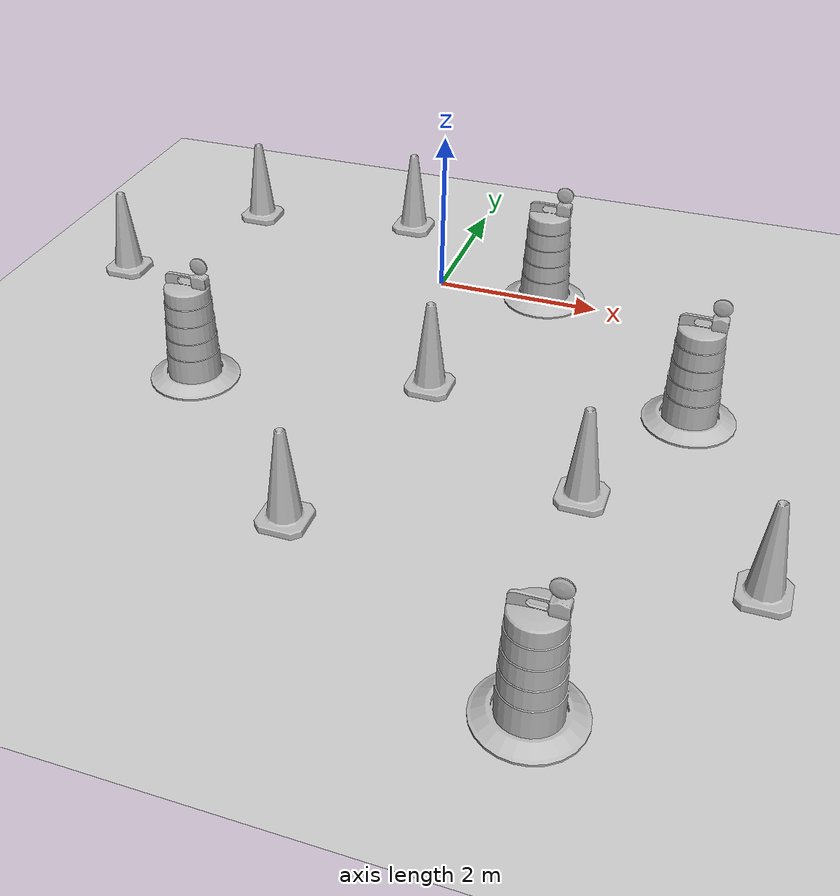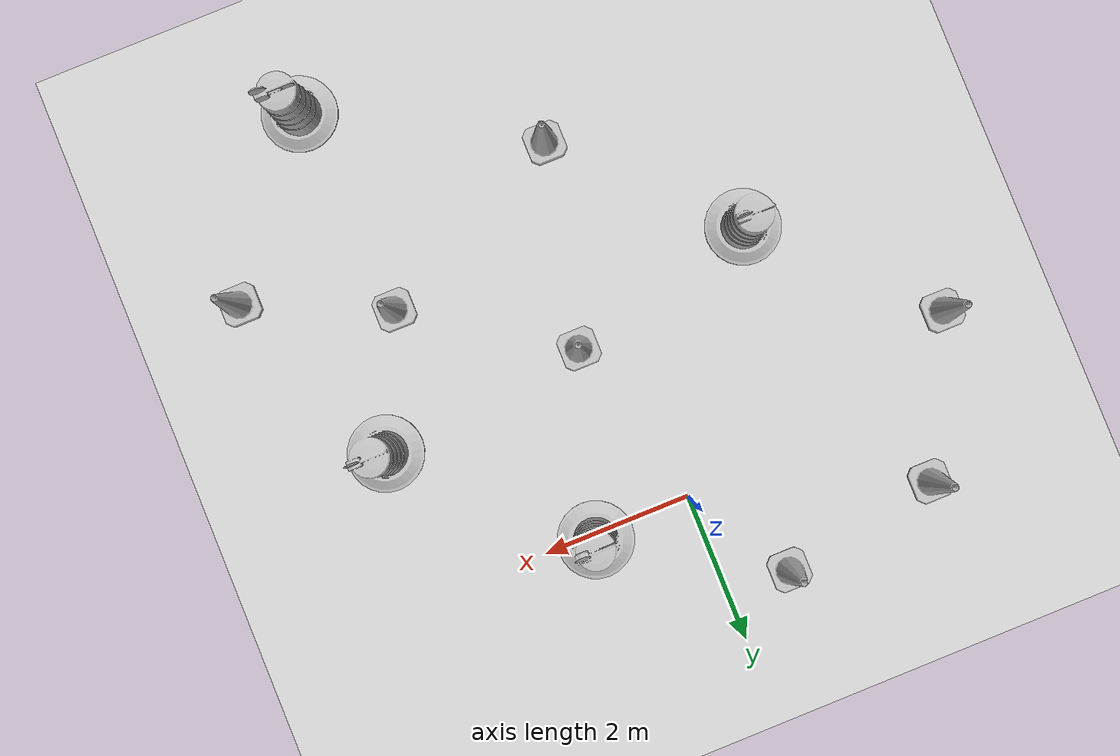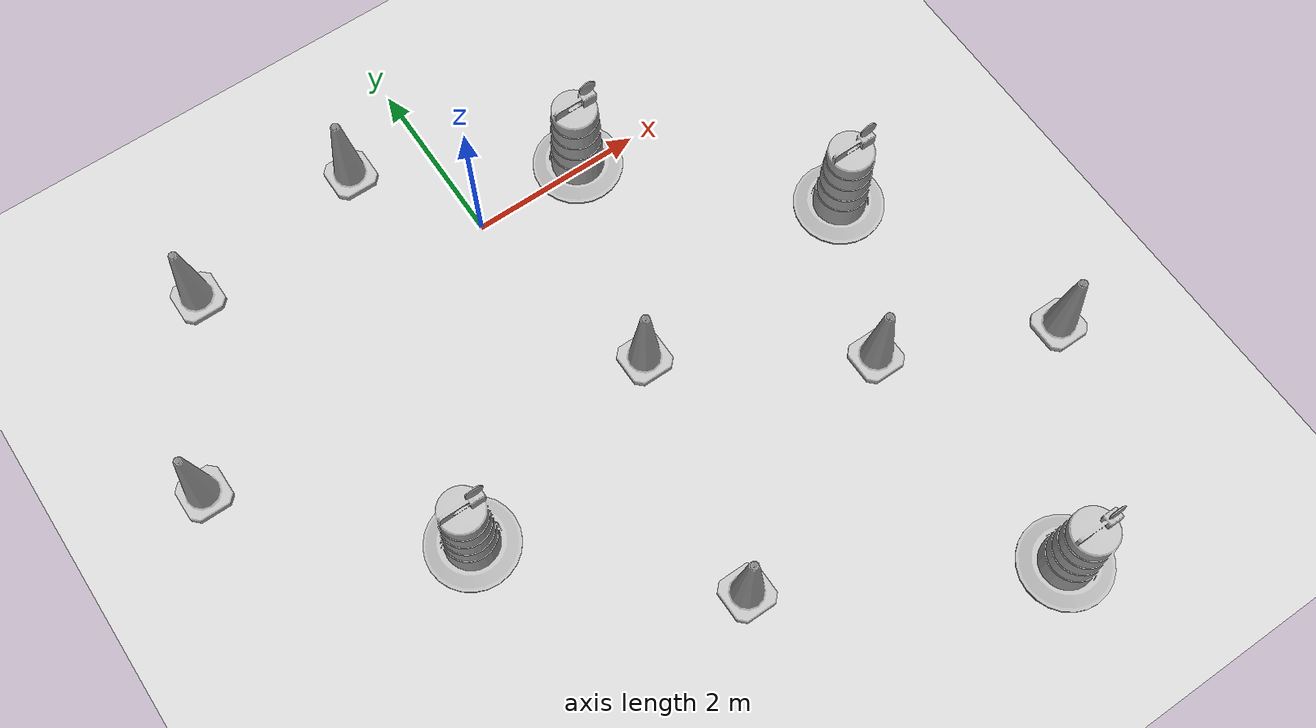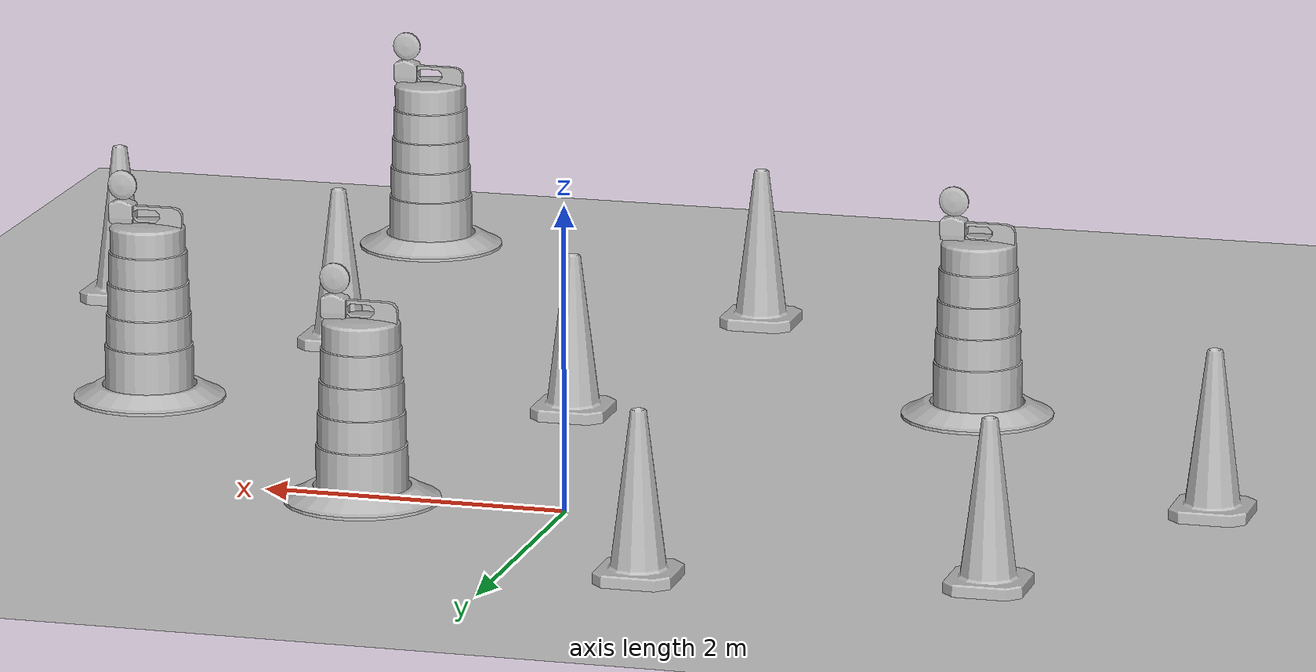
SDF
<sdf version="1.7">
 <world name="default">
  <light name="sun" type="directional">
   <pose>0 0 10 0 -0 0</pose>
   <diffuse>0.8 0.8 0.8 1</diffuse>
   <specular>0.2 0.2 0.2 1</specular>
   <attenuation>
    <range>1000</range>
    <constant>0.9</constant>
    <linear>0.01</linear>
    <quadratic>0.001</quadratic>
   </attenuation>
   <direction>-0.5 0.1 -0.9</direction>
   <spot><inner_angle>0</inner_angle><outer_angle>0</outer_angle><falloff>0</falloff></spot>
  </light>
  <model name="ground_plane">
   <static>1</static>
   <link name="link">
    <collision name="collision">
     <geometry><plane><normal>0 0 1</normal><size>100 100</size></plane></geometry>
     <surface>
      <contact><collide_bitmask>65535</collide_bitmask></contact>
      <friction><ode><mu>100</mu><mu2>50</mu2></ode></friction>
     </surface>
    </collision>
    <visual name="visual">
     <cast_shadows>0</cast_shadows>
     <geometry><plane><normal>0 0 1</normal><size>100 100</size></plane></geometry>
     <material>
      <script><uri>file://media/materials/scripts/gazebo.material</uri><name>Gazebo/Grey</name></script>
     </material>
    </visual>
   </link>
  </model>
  <gravity>0 0 -9.8</gravity>
  <magnetic_field>6e-06 2.3e-05 -4.2e-05</magnetic_field>
  <atmosphere type="adiabatic"/>
  <physics type="ode">
   <max_step_size>0.001</max_step_size>
   <real_time_factor>1</real_time_factor>
   <real_time_update_rate>1000</real_time_update_rate>
  </physics>
  <scene><ambient>0.4 0.4 0.4 1</ambient><background>0.7 0.7 0.7 1</background><shadows>1</shadows></scene>
  <audio><device>default</device></audio>
  <spherical_coordinates>
   <surface_model>EARTH_WGS84</surface_model>
   <latitude_deg>0</latitude_deg>
   <longitude_deg>0</longitude_deg>
   <elevation>0</elevation>
   <heading_deg>0</heading_deg>
  </spherical_coordinates>
  <model name="Construction Cone">
   <link name="link">
    <collision name="collision">
     <geometry>
      <mesh><scale>10 10 10</scale><uri>model://construction_cone/meshes/construction_cone.dae</uri></mesh>
     </geometry>
    </collision>
    <visual name="visual">
     <geometry>
      <mesh><scale>10 10 10</scale><uri>model://construction_cone/meshes/construction_cone.dae</uri></mesh>
     </geometry>
    </visual>
    <inertial>
     <inertia><ixx>1</ixx><ixy>0</ixy><ixz>0</ixz><iyy>1</iyy><iyz>0</iyz><izz>1</izz></inertia>
     <mass>1</mass>
    </inertial>
   </link>
   <pose>-4 -1 -0 0 -1e-06 0</pose>
  </model>
  <model name="Construction Barrel_0">
   <link name="link">
    <inertial>
     <pose>0 0 0.4 0 -0 0</pose>
     <mass>500</mass>
     <inertia><ixx>51.2096</ixx><iyy>51.2096</iyy><izz>25</izz><ixy>0</ixy><ixz>0</ixz><iyz>0</iyz></inertia>
    </inertial>
    <collision name="collision">
     <geometry><mesh><uri>model://construction_barrel/meshes/construction_barrel.dae</uri></mesh></geometry>
    </collision>
    <visual name="visual">
     <geometry><mesh><uri>model://construction_barrel/meshes/construction_barrel.dae</uri></mesh></geometry>
    </visual>
   </link>
   <pose>-2.00009 -3.00003 -2e-06 7e-06 -4e-06 -2.1e-05</pose>
  </model>
  <model name="Construction Cone_0">
   <link name="link">
    <collision name="collision">
     <geometry>
      <mesh><scale>10 10 10</scale><uri>model://construction_cone/meshes/construction_cone.dae</uri></mesh>
     </geometry>
    </collision>
    <visual name="visual">
     <geometry>
      <mesh><scale>10 10 10</scale><uri>model://construction_cone/meshes/construction_cone.dae</uri></mesh>
     </geometry>
    </visual>
    <inertial>
     <inertia><ixx>1</ixx><ixy>0</ixy><ixz>0</ixz><iyy>1</iyy><iyz>0</iyz><izz>1</izz></inertia>
     <mass>1</mass>
    </inertial>
   </link>
   <pose>-3 1 -2e-06 -3e-06 -1e-06 -0</pose>
  </model>
  <model name="Construction Barrel_1">
   <link name="link">
    <inertial>
     <pose>0 0 0.4 0 -0 0</pose>
     <mass>500</mass>
     <inertia><ixx>51.2096</ixx><iyy>51.2096</iyy><izz>25</izz><ixy>0</ixy><ixz>0</ixz><iyz>0</iyz></inertia>
    </inertial>
    <collision name="collision">
     <geometry><mesh><uri>model://construction_barrel/meshes/construction_barrel.dae</uri></mesh></geometry>
    </collision>
    <visual name="visual">
     <geometry><mesh><uri>model://construction_barrel/meshes/construction_barrel.dae</uri></mesh></geometry>
    </visual>
   </link>
   <pose>3.44883 -2.00002 -1e-06 4e-06 -2e-06 -1.5e-05</pose>
  </model>
  <model name="Construction Cone_1">
   <link name="link">
    <collision name="collision">
     <geometry>
      <mesh><scale>10 10 10</scale><uri>model://construction_cone/meshes/construction_cone.dae</uri></mesh>
     </geometry>
    </collision>
    <visual name="visual">
     <geometry>
      <mesh><scale>10 10 10</scale><uri>model://construction_cone/meshes/construction_cone.dae</uri></mesh>
     </geometry>
    </visual>
    <inertial>
     <inertia><ixx>1</ixx><ixy>0</ixy><ixz>0</ixz><iyy>1</iyy><iyz>0</iyz><izz>1</izz></inertia>
     <mass>1</mass>
    </inertial>
   </link>
   <pose>-0 -5 -0 0 -0 0</pose>
  </model>
  <model name="Construction Cone_2">
   <link name="link">
    <collision name="collision">
     <geometry>
      <mesh><scale>10 10 10</scale><uri>model://construction_cone/meshes/construction_cone.dae</uri></mesh>
     </geometry>
    </collision>
    <visual name="visual">
     <geometry>
      <mesh><scale>10 10 10</scale><uri>model://construction_cone/meshes/construction_cone.dae</uri></mesh>
     </geometry>
    </visual>
    <inertial>
     <inertia><ixx>1</ixx><ixy>0</ixy><ixz>0</ixz><iyy>1</iyy><iyz>0</iyz><izz>1</izz></inertia>
     <mass>1</mass>
    </inertial>
   </link>
   <pose>2.64525 -3.69968 -0 0 -0 0</pose>
  </model>
  <model name="Construction Cone_3">
   <link name="link">
    <collision name="collision">
     <geometry>
      <mesh><scale>10 10 10</scale><uri>model://construction_cone/meshes/construction_cone.dae</uri></mesh>
     </geometry>
    </collision>
    <visual name="visual">
     <geometry>
      <mesh><scale>10 10 10</scale><uri>model://construction_cone/meshes/construction_cone.dae</uri></mesh>
     </geometry>
    </visual>
    <inertial>
     <inertia><ixx>1</ixx><ixy>0</ixy><ixz>0</ixz><iyy>1</iyy><iyz>0</iyz><izz>1</izz></inertia>
     <mass>1</mass>
    </inertial>
   </link>
   <pose>4.49592 -4.52142 -0 0 -1e-06 0</pose>
  </model>
  <model name="Construction Cone_4">
   <link name="link">
    <collision name="collision">
     <geometry>
      <mesh><scale>10 10 10</scale><uri>model://construction_cone/meshes/construction_cone.dae</uri></mesh>
     </geometry>
    </collision>
    <visual name="visual">
     <geometry>
      <mesh><scale>10 10 10</scale><uri>model://construction_cone/meshes/construction_cone.dae</uri></mesh>
     </geometry>
    </visual>
    <inertial>
     <inertia><ixx>1</ixx><ixy>0</ixy><ixz>0</ixz><iyy>1</iyy><iyz>0</iyz><izz>1</izz></inertia>
     <mass>1</mass>
    </inertial>
   </link>
   <pose>-0.862484 1.37493 -0 0 -0 0</pose>
  </model>
  <model name="Construction Cone_5">
   <link name="link">
    <collision name="collision">
     <geometry>
      <mesh><scale>10 10 10</scale><uri>model://construction_cone/meshes/construction_cone.dae</uri></mesh>
     </geometry>
    </collision>
    <visual name="visual">
     <geometry>
      <mesh><scale>10 10 10</scale><uri>model://construction_cone/meshes/construction_cone.dae</uri></mesh>
     </geometry>
    </visual>
    <inertial>
     <inertia><ixx>1</ixx><ixy>0</ixy><ixz>0</ixz><iyy>1</iyy><iyz>0</iyz><izz>1</izz></inertia>
     <mass>1</mass>
    </inertial>
   </link>
   <pose>0.596321 -2.32337 -0 0 -0 0</pose>
  </model>
  <model name="Construction Barrel">
   <link name="link">
    <inertial>
     <pose>0 0 0.4 0 -0 0</pose>
     <mass>500</mass>
     <inertia><ixx>51.2096</ixx><iyy>51.2096</iyy><izz>25</izz><ixy>0</ixy><ixz>0</ixz><iyz>0</iyz></inertia>
    </inertial>
    <collision name="collision">
     <geometry><mesh><uri>model://construction_barrel/meshes/construction_barrel.dae</uri></mesh></geometry>
    </collision>
    <visual name="visual">
     <geometry><mesh><uri>model://construction_barrel/meshes/construction_barrel.dae</uri></mesh></geometry>
    </visual>
   </link>
   <pose>2.84856 -6.5688 -5e-06 -7e-06 -1e-05 -6e-06</pose>
  </model>
  <model name="Construction Barrel_2">
   <link name="link">
    <inertial>
     <pose>0 0 0.4 0 -0 0</pose>
     <mass>500</mass>
     <inertia><ixx>51.2096</ixx><iyy>51.2096</iyy><izz>25</izz><ixy>0</ixy><ixz>0</ixz><iyz>0</iyz></inertia>
    </inertial>
    <collision name="collision">
     <geometry><mesh><uri>model://construction_barrel/meshes/construction_barrel.dae</uri></mesh></geometry>
    </collision>
    <visual name="visual">
     <geometry><mesh><uri>model://construction_barrel/meshes/construction_barrel.dae</uri></mesh></geometry>
    </visual>
   </link>
   <pose>1.32761 0.06762 -2e-06 7e-06 -2e-06 -4e-06</pose>
  </model>
 </world>
</sdf>
